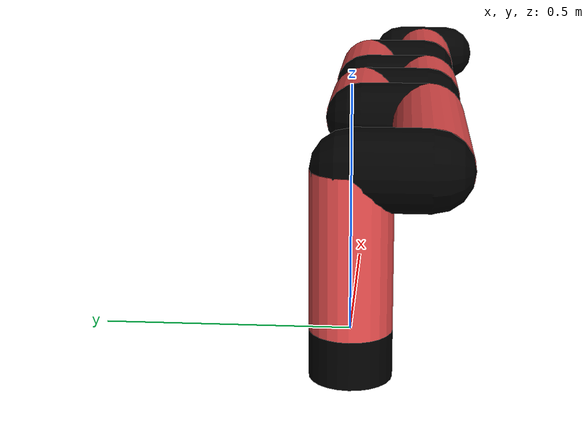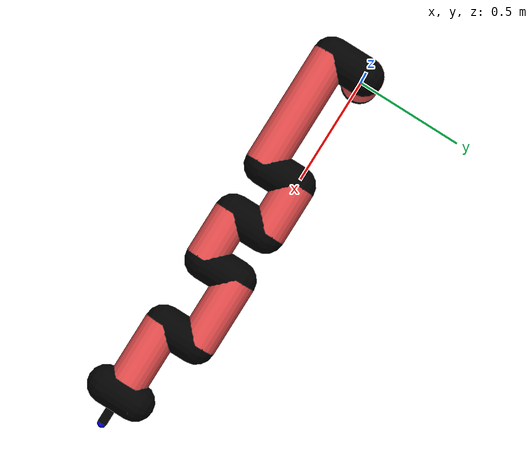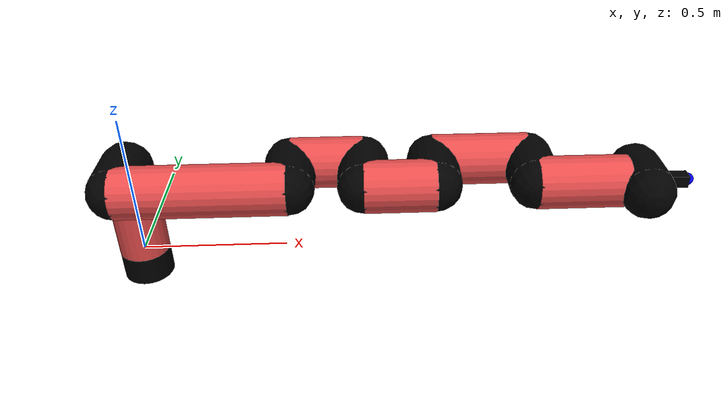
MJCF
<mujoco model="manipulator">
		<compiler angle="degree" coordinate="local" inertiafromgeom="auto" meshdir="meshes/"/>
		<option gravity="0 0 0" integrator="RK4" iterations="30" timestep="0.01"/>

		<default>
		<joint armature="1" limited="true" stiffness="10" damping="15" frictionloss="5.0"/>
		<geom conaffinity="1" condim="3" contype="1" friction=".5 .1 .1" margin="0.002"/>
		<motor ctrllimited="true"/>
		<position ctrllimited="true"/>
		</default>

		<asset>
		<texture builtin="gradient" height="100" rgb1="1.0 1.0 1.0" rgb2="1.0 1.0 1.0" type="skybox" width="100"/>
		<texture builtin="flat" height="32" name="arm_tex" rgb1="0.9 0.3 0.3" type="2d" width="32"/>
		<texture builtin="flat" height="32" name="gripper_tex" rgb1="0.0 0.0 0.0" type="cube" width="32"/>

		<material name="arm_mat" shininess="0.1" specular="0.1" texture="arm_tex"/>
		<material name="gripper_mat" shininess="1" specular="1" texture="gripper_tex"/>
		</asset>

		<worldbody>
		<light cutoff="45" diffuse=".8 .8 .8" dir="0 0.16 -1" directional="false" name="light" pos="0 -2.0 8.0" specular="0.3 0.3 0.3"/>

		<body name="base_link" pos="0 0 -0.1">
		<geom fromto="0 0 0 0 0 0.1" material="arm_mat" name="base_link" rgba="0.0 0.0 0.0 1" size="0.085" type="cylinder"/>
		</body>

		<body name="l1" pos="0 0 0">
<geom fromto="0 0 0 0 0 0.33" material="arm_mat" name="l1" rgba="0.9 0.3 0.3 1" size="0.085" type="cylinder"/>
<geom fromto="0 0 0.33 0 -0.16 0.33" material="arm_mat" name="l1_ex" rgba="0.0 0.0 0.0 1" size="0.085" type="capsule"/>
<joint axis="0 0 1" name="j1" pos="0 0 0" range="-90 90" damping="23.47" frictionloss="11.62"/>

<body name="l2" pos="0 -0.16 0.33">
<geom fromto="0 0 0 0.54 0 0" material="arm_mat" name="l2" rgba="0.9 0.3 0.3 1" size="0.085" type="cylinder"/>
<geom fromto="0.54 0 0 0.54 0.16 0" material="arm_mat" name="l2_ex" rgba="0.0 0.0 0.0 1" size="0.085" type="capsule"/>
<joint axis="0.0 1.0 0.0" name="j2" pos="0 0 0" range="-90 60" damping="23.6" frictionloss="7.5"/>

<body name="l3" pos="0.54 0.16 0">
<geom fromto="0 0 0 0.24 0 0" material="arm_mat" name="l3" rgba="0.9 0.3 0.3 1" size="0.085" type="cylinder"/>
<geom fromto="0.24 0 0 0.24 -0.16 0" material="arm_mat" name="l3_ex" rgba="0.0 0.0 0.0 1" size="0.085" type="capsule"/>
<joint axis="0.0 1.0 0.0" name="j3" pos="0 0 0" range="-30 60" damping="23.81" frictionloss="11.81"/>

<body name="l4" pos="0.24 -0.16 0">
<geom fromto="0 0 0 0.23 0 0" material="arm_mat" name="l4" rgba="0.9 0.3 0.3 1" size="0.085" type="cylinder"/>
<geom fromto="0.23 0 0 0.23 0.16 0" material="arm_mat" name="l4_ex" rgba="0.0 0.0 0.0 1" size="0.085" type="capsule"/>
<joint axis="0.0 1.0 0.0" name="j4" pos="0 0 0" range="-30 60" damping="37.48" frictionloss="9.65"/>

<body name="l5" pos="0.23 0.16 0">
<geom fromto="0 0 0 0.32 0 0" material="arm_mat" name="l5" rgba="0.9 0.3 0.3 1" size="0.085" type="cylinder"/>
<geom fromto="0.32 0 0 0.32 -0.16 0" material="arm_mat" name="l5_ex" rgba="0.0 0.0 0.0 1" size="0.085" type="capsule"/>
<joint axis="0.0 1.0 0.0" name="j5" pos="0 0 0" range="-30 60" damping="27.83" frictionloss="11.63"/>

<body name="l6" pos="0.32 -0.16 0">
<geom fromto="0 0 0 0.29 0 0" material="arm_mat" name="l6" rgba="0.9 0.3 0.3 1" size="0.085" type="cylinder"/>
<joint axis="0.0 1.0 0.0" name="j6" pos="0 0 0" range="-30 60" damping="27.81" frictionloss="9.61"/>

<body name="gripper" pos="0.29 0 0">
<geom fromto="0.05 -0.07 0 0.05 0.07 0" material="gripper_mat" name="gripper" rgba="0.0 0.0 0.0 1" size="0.085" type="capsule"/><joint axis="1 0 0" name="j7" pos="0 0 0" range="-90 90" damping="15" frictionloss="5.0"/><body name="finger" pos="0.1 0 0">
<geom fromto="0 0.0 0 0.1 0.0 0" material="gripper_mat" name="finger" rgba="0.0 0.0 0.0 1" size="0.020 0.06 0.06" type="box"/>
</body>
<site name="current" pos="0.2 0. 0.0" rgba="0. 0. 1.0 1" size="0.02" type="sphere"/>
</body>
</body>
</body>
</body>
</body>
</body>
</body>
</worldbody>
<actuator>
<motor ctrllimited="true" ctrlrange="-1.0 1.0" joint="j1" gear="75.74"/>
<motor ctrllimited="true" ctrlrange="-1.0 1.0" joint="j2" gear="61.2"/>
<motor ctrllimited="true" ctrlrange="-1.0 1.0" joint="j3" gear="81.94"/>
<motor ctrllimited="true" ctrlrange="-1.0 1.0" joint="j4" gear="87.28"/>
<motor ctrllimited="true" ctrlrange="-1.0 1.0" joint="j5" gear="98.68"/>
<motor ctrllimited="true" ctrlrange="-1.0 1.0" joint="j6" gear="93.27"/>
<motor ctrllimited="true" ctrlrange="-1.0 1.0" joint="j7" gear="80"/>
</actuator>
</mujoco>
